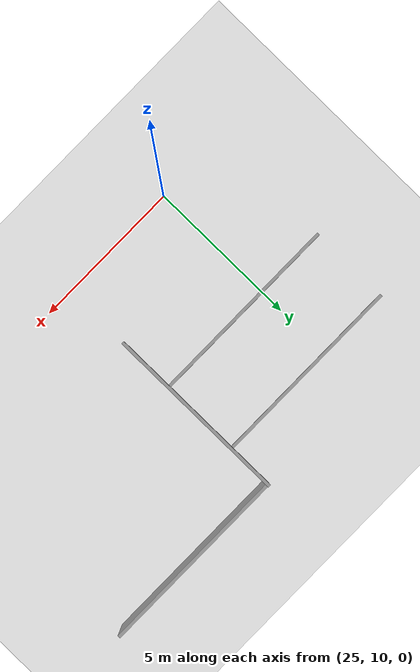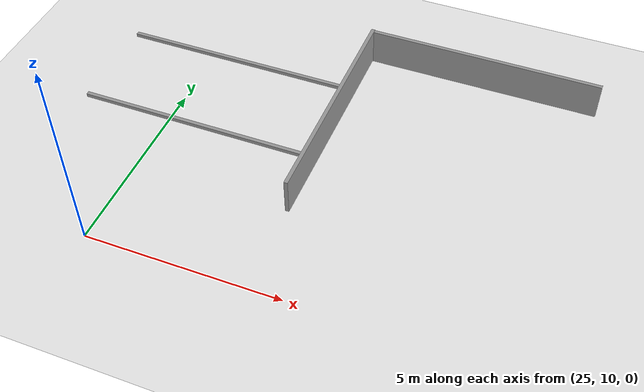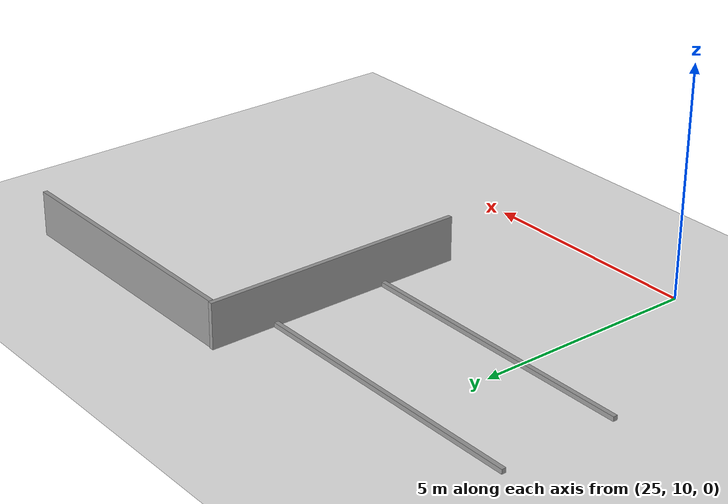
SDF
<sdf version="1.6">
 <world name="default">
  <model name="ground_plane">
   <static>1</static>
   <link name="link">
    <collision name="collision">
     <geometry><plane><normal>0 0 1</normal><size>100 100</size></plane></geometry>
     <surface><friction><ode><mu>100</mu><mu2>50</mu2></ode></friction></surface>
    </collision>
    <visual name="visual">
     <cast_shadows>0</cast_shadows>
     <geometry><plane><normal>0 0 1</normal><size>100 100</size></plane></geometry>
     <material>
      <script><uri>file://media/materials/scripts/gazebo.material</uri><name>Gazebo/WhiteGlow</name></script>
     </material>
    </visual>
   </link>
  </model>
  <model name="L81">
   <link name="link_clone_0_clone_clone">
    <pose>-1.07086 50.8097 0 0 -0 0</pose>
    <inertial>
     <mass>1</mass>
     <inertia>
      <ixx>0.166667</ixx>
      <ixy>0</ixy>
      <ixz>0</ixz>
      <iyy>0.166667</iyy>
      <iyz>0</iyz>
      <izz>0.166667</izz>
     </inertia>
    </inertial>
    <visual name="visual">
     <geometry><box><size>0.1 6.12 1</size></box></geometry>
     <material>
      <script><name>Gazebo/Grey</name><uri>file://media/materials/scripts/gazebo.material</uri></script>
      <shader type="pixel"><normal_map>__default__</normal_map></shader>
      <ambient>0.3 0.3 0.3 1</ambient>
      <diffuse>0.7 0.7 0.7 1</diffuse>
      <specular>0.01 0.01 0.01 1</specular>
      <emissive>0 0 0 1</emissive>
     </material>
    </visual>
    <collision name="collision">
     <geometry><box><size>0.1 6.12 1</size></box></geometry>
     <surface>
      <friction>
       <ode><mu>1</mu><mu2>1</mu2><fdir1>0 0 0</fdir1><slip1>0</slip1><slip2>0</slip2></ode>
       <torsional>
        <coefficient>1</coefficient>
        <patch_radius>0</patch_radius>
        <surface_radius>0</surface_radius>
        <use_patch_radius>1</use_patch_radius>
        <ode><slip>0</slip></ode>
       </torsional>
      </friction>
      <bounce><restitution_coefficient>0</restitution_coefficient><threshold>1e+06</threshold></bounce>
      <contact>
       <collide_without_contact>0</collide_without_contact>
       <collide_without_contact_bitmask>1</collide_without_contact_bitmask>
       <collide_bitmask>1</collide_bitmask>
       <ode>
        <soft_cfm>0</soft_cfm>
        <soft_erp>0.2</soft_erp>
        <kp>1e+13</kp>
        <kd>1</kd>
        <max_vel>0.01</max_vel>
        <min_depth>0</min_depth>
       </ode>
       <bullet>
        <split_impulse>1</split_impulse>
        <split_impulse_penetration_threshold>-0.01</split_impulse_penetration_threshold>
        <soft_cfm>0</soft_cfm>
        <soft_erp>0.2</soft_erp>
        <kp>1e+13</kp>
        <kd>1</kd>
       </bullet>
      </contact>
     </surface>
    </collision>
   </link>
   <link name="link_clone_0_clone_clone_0_clone_clone_clone_1_clone_0_clone_clone_clone_0">
    <pose>3.02058 44.4084 -0.453071 0 -0 0</pose>
    <inertial>
     <mass>2.31092</mass>
     <inertia><ixx>8.24145</ixx><ixy>0</ixy><ixz>0</ixz><iyy>0.194503</iyy><iyz>0</iyz><izz>8.0508</izz></inertia>
    </inertial>
    <visual name="visual">
     <geometry><box><size>0.1 6.46495 0.1</size></box></geometry>
     <material>
      <script><name>Gazebo/Grey</name><uri>file://media/materials/scripts/gazebo.material</uri></script>
      <shader type="pixel"><normal_map>__default__</normal_map></shader>
      <ambient>0.3 0.3 0.3 1</ambient>
      <diffuse>0.7 0.7 0.7 1</diffuse>
      <specular>0.01 0.01 0.01 1</specular>
      <emissive>0 0 0 1</emissive>
     </material>
    </visual>
    <collision name="collision">
     <geometry><box><size>0.1 6.46495 0.1</size></box></geometry>
     <surface>
      <friction>
       <ode><mu>1</mu><mu2>1</mu2><fdir1>0 0 0</fdir1><slip1>0</slip1><slip2>0</slip2></ode>
       <torsional>
        <coefficient>1</coefficient>
        <patch_radius>0</patch_radius>
        <surface_radius>0</surface_radius>
        <use_patch_radius>1</use_patch_radius>
        <ode><slip>0</slip></ode>
       </torsional>
      </friction>
      <bounce><restitution_coefficient>0</restitution_coefficient><threshold>1e+06</threshold></bounce>
      <contact>
       <collide_without_contact>0</collide_without_contact>
       <collide_without_contact_bitmask>1</collide_without_contact_bitmask>
       <collide_bitmask>1</collide_bitmask>
       <ode>
        <soft_cfm>0</soft_cfm>
        <soft_erp>0.2</soft_erp>
        <kp>1e+13</kp>
        <kd>1</kd>
        <max_vel>0.01</max_vel>
        <min_depth>0</min_depth>
       </ode>
       <bullet>
        <split_impulse>1</split_impulse>
        <split_impulse_penetration_threshold>-0.01</split_impulse_penetration_threshold>
        <soft_cfm>0</soft_cfm>
        <soft_erp>0.2</soft_erp>
        <kp>1e+13</kp>
        <kd>1</kd>
       </bullet>
      </contact>
     </surface>
    </collision>
   </link>
   <link name="link_clone_0_clone_clone_0_clone_clone_clone_1_clone_0_clone_clone_clone_0_clone">
    <pose>0.350616 44.4083 -0.455154 0 -0 0</pose>
    <inertial>
     <mass>2.31092</mass>
     <inertia><ixx>8.24145</ixx><ixy>0</ixy><ixz>0</ixz><iyy>0.194503</iyy><iyz>0</iyz><izz>8.0508</izz></inertia>
    </inertial>
    <visual name="visual">
     <geometry><box><size>0.1 6.46495 0.1</size></box></geometry>
     <material>
      <script><name>Gazebo/Grey</name><uri>file://media/materials/scripts/gazebo.material</uri></script>
      <shader type="pixel"><normal_map>__default__</normal_map></shader>
      <ambient>0.3 0.3 0.3 1</ambient>
      <diffuse>0.7 0.7 0.7 1</diffuse>
      <specular>0.01 0.01 0.01 1</specular>
      <emissive>0 0 0 1</emissive>
     </material>
    </visual>
    <collision name="collision">
     <geometry><box><size>0.1 6.46495 0.1</size></box></geometry>
     <surface>
      <friction>
       <ode><mu>1</mu><mu2>1</mu2><fdir1>0 0 0</fdir1><slip1>0</slip1><slip2>0</slip2></ode>
       <torsional>
        <coefficient>1</coefficient>
        <patch_radius>0</patch_radius>
        <surface_radius>0</surface_radius>
        <use_patch_radius>1</use_patch_radius>
        <ode><slip>0</slip></ode>
       </torsional>
      </friction>
      <bounce><restitution_coefficient>0</restitution_coefficient><threshold>1e+06</threshold></bounce>
      <contact>
       <collide_without_contact>0</collide_without_contact>
       <collide_without_contact_bitmask>1</collide_without_contact_bitmask>
       <collide_bitmask>1</collide_bitmask>
       <ode>
        <soft_cfm>0</soft_cfm>
        <soft_erp>0.2</soft_erp>
        <kp>1e+13</kp>
        <kd>1</kd>
        <max_vel>0.01</max_vel>
        <min_depth>0</min_depth>
       </ode>
       <bullet>
        <split_impulse>1</split_impulse>
        <split_impulse_penetration_threshold>-0.01</split_impulse_penetration_threshold>
        <soft_cfm>0</soft_cfm>
        <soft_erp>0.2</soft_erp>
        <kp>1e+13</kp>
        <kd>1</kd>
       </bullet>
      </contact>
     </surface>
    </collision>
   </link>
   <link name="link_clone_clone_clone">
    <pose>1.83756 47.6926 -0 0 -0 0</pose>
    <inertial>
     <mass>4.16318</mass>
     <inertia><ixx>0.350401</ixx><ixy>0</ixy><ixz>0</ixz><iyy>12.643</iyy><iyz>0</iyz><izz>12.2996</izz></inertia>
    </inertial>
    <visual name="visual">
     <geometry><box><size>5.95335 0.1 1</size></box></geometry>
     <material>
      <script><name>Gazebo/Grey</name><uri>file://media/materials/scripts/gazebo.material</uri></script>
      <shader type="pixel"><normal_map>__default__</normal_map></shader>
      <ambient>0.3 0.3 0.3 1</ambient>
      <diffuse>0.7 0.7 0.7 1</diffuse>
      <specular>0.01 0.01 0.01 1</specular>
      <emissive>0 0 0 1</emissive>
     </material>
    </visual>
    <collision name="collision">
     <geometry><box><size>5.95335 0.1 1</size></box></geometry>
     <surface>
      <friction>
       <ode><mu>1</mu><mu2>1</mu2><fdir1>0 0 0</fdir1><slip1>0</slip1><slip2>0</slip2></ode>
       <torsional>
        <coefficient>1</coefficient>
        <patch_radius>0</patch_radius>
        <surface_radius>0</surface_radius>
        <use_patch_radius>1</use_patch_radius>
        <ode><slip>0</slip></ode>
       </torsional>
      </friction>
      <bounce><restitution_coefficient>0</restitution_coefficient><threshold>1e+06</threshold></bounce>
      <contact>
       <collide_without_contact>0</collide_without_contact>
       <collide_without_contact_bitmask>1</collide_without_contact_bitmask>
       <collide_bitmask>1</collide_bitmask>
       <ode>
        <soft_cfm>0</soft_cfm>
        <soft_erp>0.2</soft_erp>
        <kp>1e+13</kp>
        <kd>1</kd>
        <max_vel>0.01</max_vel>
        <min_depth>0</min_depth>
       </ode>
       <bullet>
        <split_impulse>1</split_impulse>
        <split_impulse_penetration_threshold>-0.01</split_impulse_penetration_threshold>
        <soft_cfm>0</soft_cfm>
        <soft_erp>0.2</soft_erp>
        <kp>1e+13</kp>
        <kd>1</kd>
       </bullet>
      </contact>
     </surface>
    </collision>
   </link>
   <static>1</static>
   <pose>-18.6342 17.1649 0.502995 -9.9e-05 2e-06 -1.56996</pose>
  </model>
 </world>
</sdf>
